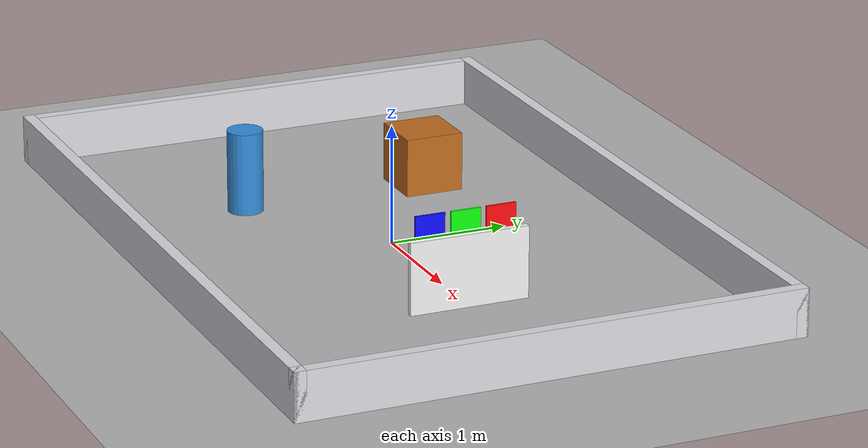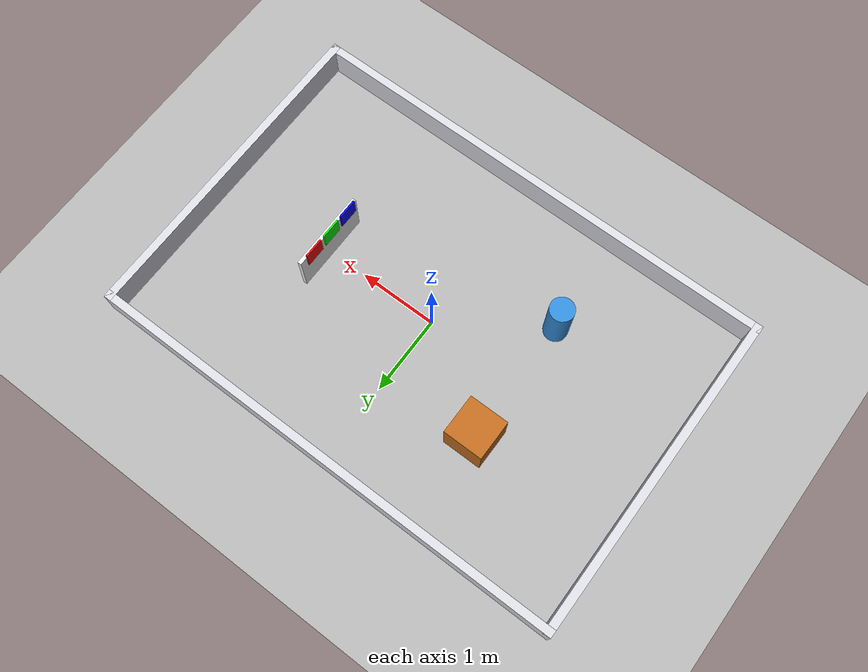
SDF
<?xml version="1.0"?>
<sdf version="1.8">
  <world name="test_arena">
    <physics name="1ms" type="ignored">
      <max_step_size>0.001</max_step_size>
      <real_time_factor>1.0</real_time_factor>
    </physics>

    <plugin filename="ignition-gazebo-physics-system"
            name="ignition::gazebo::systems::Physics"/>
    <plugin filename="ignition-gazebo-user-commands-system"
            name="ignition::gazebo::systems::UserCommands"/>
    <plugin filename="ignition-gazebo-scene-broadcaster-system"
            name="ignition::gazebo::systems::SceneBroadcaster"/>
    <plugin filename="ignition-gazebo-sensors-system"
            name="ignition::gazebo::systems::Sensors">
      <render_engine>ogre2</render_engine>
    </plugin>
    <plugin filename="ignition-gazebo-imu-system"
            name="ignition::gazebo::systems::Imu"/>
    <gui fullscreen="0">
      <plugin filename="MinimalScene" name="3D View">
        <gz-gui>
          <title>3D View</title>
          <property type="bool" key="showTitleBar">false</property>
          <property type="string" key="state">docked</property>
        </gz-gui>
        <engine>ogre2</engine>
        <scene>scene</scene>
        <ambient_light>0.65 0.65 0.65</ambient_light>
        <background_color>0.80 0.86 0.93</background_color>
        <camera_pose>5 -5 5 0 0.6 2.35</camera_pose>
      </plugin>
      <plugin filename="EntityContextMenuPlugin" name="Entity context menu">
        <gz-gui>
          <property key="state" type="string">floating</property>
          <property key="width" type="double">5</property>
          <property key="height" type="double">5</property>
          <property key="showTitleBar" type="bool">false</property>
        </gz-gui>
      </plugin>
      <plugin filename="GzSceneManager" name="Scene Manager">
        <gz-gui>
          <property key="state" type="string">floating</property>
          <property key="width" type="double">5</property>
          <property key="height" type="double">5</property>
          <property key="showTitleBar" type="bool">false</property>
        </gz-gui>
      </plugin>
      <plugin
        filename="InteractiveViewControl"
        name="Interactive view control">
        <gz-gui>
          <property key="state" type="string">floating</property>
          <property key="width" type="double">5</property>
          <property key="height" type="double">5</property>
          <property key="showTitleBar" type="bool">false</property>
        </gz-gui>
      </plugin>
      <plugin filename="CameraTracking" name="Camera Tracking">
        <gz-gui>
          <property key="state" type="string">floating</property>
          <property key="width" type="double">5</property>
          <property key="height" type="double">5</property>
          <property key="showTitleBar" type="bool">false</property>
        </gz-gui>
      </plugin>
      <plugin filename="SelectEntities" name="Select Entities">
        <gz-gui>
          <property key="state" type="string">floating</property>
          <property key="width" type="double">5</property>
          <property key="height" type="double">5</property>
          <property key="showTitleBar" type="bool">false</property>
        </gz-gui>
      </plugin>
      <plugin
        filename="VisualizationCapabilities"
        name="Visualization Capabilities">
        <gz-gui>
          <property key="state" type="string">floating</property>
          <property key="width" type="double">5</property>
          <property key="height" type="double">5</property>
          <property key="showTitleBar" type="bool">false</property>
        </gz-gui>
      </plugin>
      <plugin filename="TransformControl" name="Transform control">
        <gz-gui>
          <property key="resizable" type="bool">false</property>
          <property key="x" type="double">0</property>
          <property key="y" type="double">0</property>
          <property key="width" type="double">250</property>
          <property key="height" type="double">50</property>
          <property key="state" type="string">floating</property>
          <property key="showTitleBar" type="bool">false</property>
          <property key="cardBackground" type="string">#777777</property>
        </gz-gui>
        <legacy>false</legacy>
      </plugin>
      <plugin filename="WorldControl" name="World control">
        <gz-gui>
          <property type="string" key="state">floating</property>
          <property type="bool" key="showTitleBar">false</property>
        </gz-gui>
        <play_pause>true</play_pause>
        <step>true</step>
      </plugin>
      <plugin filename="Teleop" name="ignition::gui::plugins::Teleop">
        <topic>/cmd_vel</topic>
        <ignition-gui>
          <property type="bool" key="showTitleBar">true</property>
          <property type="string" key="state">docked</property>
          <property key="resizable" type="bool">true</property>
        </ignition-gui>
      </plugin>
      <plugin filename="EntityTree" name="Entity tree">
        <gz-gui>
          <property type="string" key="state">docked_collapsed</property>
        </gz-gui>
      </plugin>
      <plugin filename="ComponentInspector" name="Component inspector">
        <gz-gui>
          <property type="string" key="state">docked_collapsed</property>
        </gz-gui>
      </plugin>
    </gui>

    <scene>
      <ambient>0.65 0.65 0.65 1</ambient>
      <background>0.80 0.86 0.93 1</background>
      <shadows>true</shadows>
      <grid>true</grid>
    </scene>
    <light type="directional" name="sun">
      <pose>0 0 8 0 0 0</pose>
      <cast_shadows>true</cast_shadows>
      <diffuse>0.95 0.95 0.95 1</diffuse>
      <specular>0.2 0.2 0.2 1</specular>
      <direction>-0.4 0.25 -0.88</direction>
    </light>

    <model name="ground_plane">
      <static>true</static>
      <link name="link">
        <collision name="collision">
          <geometry>
            <plane><normal>0 0 1</normal><size>8 6</size></plane>
          </geometry>
          <surface>
            <friction><ode><mu>1.0</mu><mu2>1.0</mu2></ode></friction>
          </surface>
        </collision>
        <visual name="visual">
          <geometry>
            <plane><normal>0 0 1</normal><size>8 6</size></plane>
          </geometry>
          <material>
            <ambient>0.70 0.70 0.70 1</ambient>
            <diffuse>0.70 0.70 0.70 1</diffuse>
          </material>
        </visual>
      </link>
    </model>

    <!-- The clear driving area is 6.0 x 4.0 metres. -->
    <model name="arena_walls">
      <static>true</static>
      <link name="walls">
        <collision name="north">
          <pose>0 2.05 0.20 0 0 0</pose>
          <geometry><box><size>6.2 0.10 0.40</size></box></geometry>
        </collision>
        <collision name="south">
          <pose>0 -2.05 0.20 0 0 0</pose>
          <geometry><box><size>6.2 0.10 0.40</size></box></geometry>
        </collision>
        <collision name="east">
          <pose>3.05 0 0.20 0 0 0</pose>
          <geometry><box><size>0.10 4.2 0.40</size></box></geometry>
        </collision>
        <collision name="west">
          <pose>-3.05 0 0.20 0 0 0</pose>
          <geometry><box><size>0.10 4.2 0.40</size></box></geometry>
        </collision>
        <visual name="north_visual">
          <pose>0 2.05 0.20 0 0 0</pose>
          <geometry><box><size>6.2 0.10 0.40</size></box></geometry>
          <material><diffuse>0.85 0.85 0.88 1</diffuse></material>
        </visual>
        <visual name="south_visual">
          <pose>0 -2.05 0.20 0 0 0</pose>
          <geometry><box><size>6.2 0.10 0.40</size></box></geometry>
          <material><diffuse>0.85 0.85 0.88 1</diffuse></material>
        </visual>
        <visual name="east_visual">
          <pose>3.05 0 0.20 0 0 0</pose>
          <geometry><box><size>0.10 4.2 0.40</size></box></geometry>
          <material><diffuse>0.85 0.85 0.88 1</diffuse></material>
        </visual>
        <visual name="west_visual">
          <pose>-3.05 0 0.20 0 0 0</pose>
          <geometry><box><size>0.10 4.2 0.40</size></box></geometry>
          <material><diffuse>0.85 0.85 0.88 1</diffuse></material>
        </visual>
      </link>
    </model>

    <!-- Known-size targets for LiDAR range and camera direction checks. -->
    <model name="one_meter_lidar_target">
      <static>true</static>
      <pose>1.50 0 0.30 0 0 0</pose>
      <link name="link">
        <collision name="collision">
          <geometry><box><size>0.05 1.0 0.60</size></box></geometry>
        </collision>
        <visual name="visual">
          <geometry><box><size>0.05 1.0 0.60</size></box></geometry>
          <material><diffuse>0.95 0.95 0.95 1</diffuse></material>
        </visual>
      </link>
    </model>

    <model name="camera_color_target">
      <static>true</static>
      <pose>1.43 0 0.65 0 0 0</pose>
      <link name="link">
        <visual name="red">
          <pose>0 0.30 0 0 0 0</pose>
          <geometry><box><size>0.02 0.25 0.25</size></box></geometry>
          <material><diffuse>1 0.05 0.05 1</diffuse></material>
        </visual>
        <visual name="green">
          <geometry><box><size>0.02 0.25 0.25</size></box></geometry>
          <material><diffuse>0.05 1 0.05 1</diffuse></material>
        </visual>
        <visual name="blue">
          <pose>0 -0.30 0 0 0 0</pose>
          <geometry><box><size>0.02 0.25 0.25</size></box></geometry>
          <material><diffuse>0.05 0.05 1 1</diffuse></material>
        </visual>
      </link>
    </model>

    <model name="collision_box">
      <static>true</static>
      <pose>-1.20 0.80 0.25 0 0 0</pose>
      <link name="link">
        <collision name="collision">
          <geometry><box><size>0.50 0.50 0.50</size></box></geometry>
        </collision>
        <visual name="visual">
          <geometry><box><size>0.50 0.50 0.50</size></box></geometry>
          <material><diffuse>0.75 0.42 0.12 1</diffuse></material>
        </visual>
      </link>
    </model>

    <model name="cylindrical_target">
      <static>true</static>
      <pose>-1.20 -0.80 0.35 0 0 0</pose>
      <link name="link">
        <collision name="collision">
          <geometry><cylinder><radius>0.15</radius><length>0.70</length></cylinder></geometry>
        </collision>
        <visual name="visual">
          <geometry><cylinder><radius>0.15</radius><length>0.70</length></cylinder></geometry>
          <material><diffuse>0.2 0.55 0.85 1</diffuse></material>
        </visual>
      </link>
    </model>

  </world>
</sdf>
